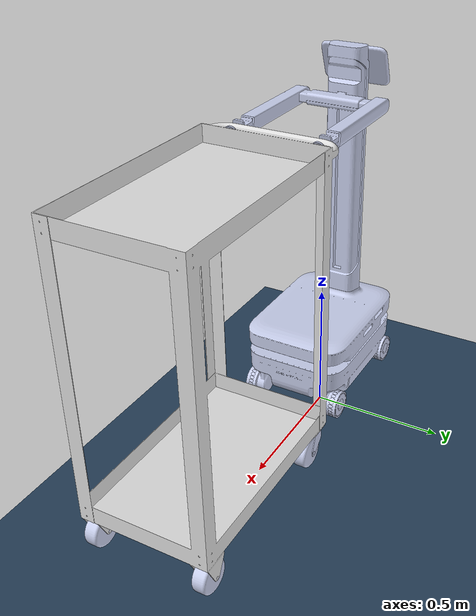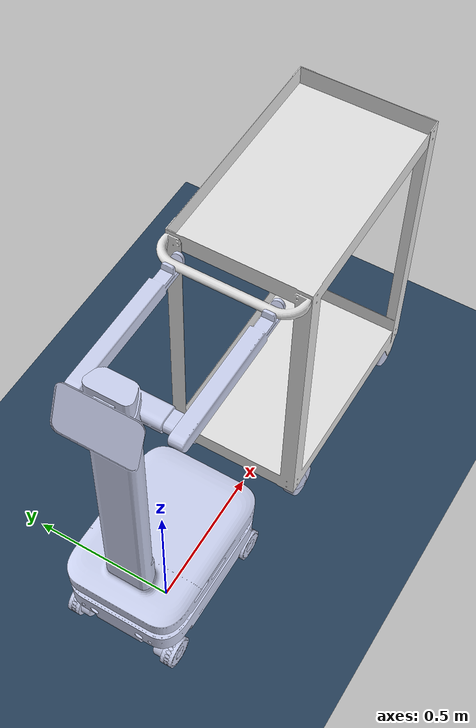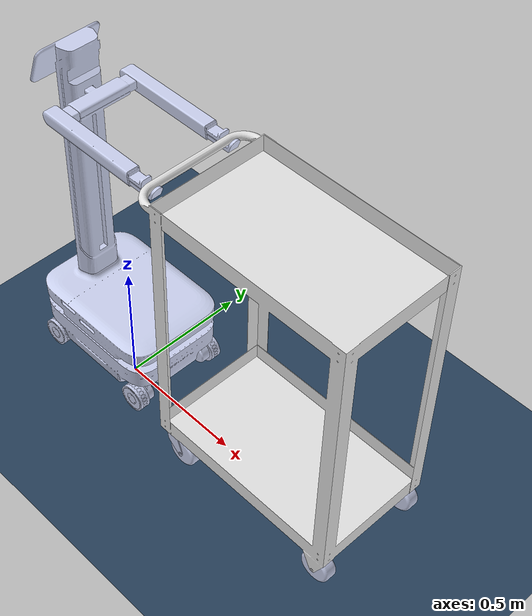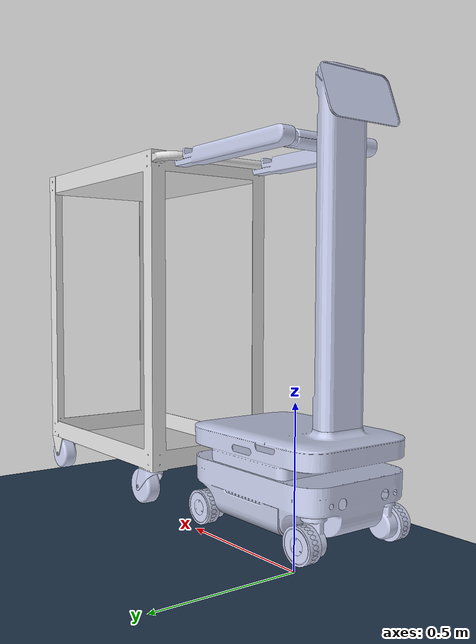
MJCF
<mujoco model="Compal cart scene">
  <include file="compal_amr_cart.xml"/>

  <statistic center="0 0 0.1" extent="0.8"/>

  <visual>
    <headlight diffuse="0.6 0.6 0.6" ambient="0.3 0.3 0.3" specular="0 0 0"/>
    <rgba haze="0.15 0.25 0.35 1"/>
    <global azimuth="-130" elevation="-20"/>
  </visual>

  <asset>
    <texture type="skybox" builtin="gradient" rgb1="0.3 0.5 0.7" rgb2="0 0 0" width="512" height="3072"/>
    <texture type="2d" name="groundplane" builtin="checker" mark="edge" rgb1="0.2 0.3 0.4" rgb2="0.1 0.2 0.3"
      markrgb="0.8 0.8 0.8" width="300" height="300"/>
    <material name="groundplane" texture="groundplane" texuniform="true" texrepeat="5 5" reflectance="0.2"/>
  </asset>

  <worldbody>
    <light pos="0 0 1.5" dir="0 0 -1" directional="true"/>
    <geom name="floor" size="0 0 0.05" type="plane" material="groundplane"/>

  </worldbody>
</mujoco>

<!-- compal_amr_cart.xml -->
<mujoco model="compal_amr_cart">
  <compiler angle="radian" meshdir="meshes"/>

  <default>
      <default class="compal_amr_cart">
          <geom friction="0.4" margin="0.001" condim="1"/>
          <joint damping="0.1" armature="0.01" frictionloss="0.2"/>
          <motor ctrlrange="-23.7 23.7"/>
          <default class="visual">
              <geom type="mesh" contype="0" conaffinity="0" group="2"/>
          </default>
          <default class="rotate">
              <joint axis="0 0 1"/>
              <motor ctrlrange="-23.7 23.7"/>
          </default>
          <default class="collision">
              <geom group="3" type="mesh" rgba="1 0 0 0.3" />
              <default class="wheel">
              <geom size="0.022" priority="1" condim="6"
                  friction="0.5 0.02 0.01"/>
              </default>
          </default>
      </default>
  </default>

  <asset>
    <mesh name="base_link" file="base_link.STL"/>
    <mesh name="base_link_collision" file="base_link_collision.STL"/>
    <mesh name="FL" file="FL.STL"/>
    <mesh name="FLW" file="FLW.STL"/>
    <mesh name="FR" file="FR.STL"/>
    <mesh name="FRW" file="FRW.STL"/>
    <mesh name="RL" file="RL.STL"/>
    <mesh name="RLW" file="RLW.STL"/>
    <mesh name="RR" file="RR.STL"/>
    <mesh name="RRW" file="RRW.STL"/>
    <mesh name="amr_body" file="amr_body.STL"/>
    <mesh name="amr_body_collision" file="amr_body_collision.STL"/>
    <mesh name="L_hand" file="L_hand.STL"/>
    <mesh name="L_hand_collision" file="L_hand_collision.STL"/>
    <mesh name="R_hand" file="R_hand.STL"/>
    <mesh name="R_hand_collision" file="R_hand_collision.STL"/>
    <mesh name="cart" file="cart.STL"/>
    <mesh name="cart_collision" file="cart_collision.STL"/>
    <mesh name="cart_FLW" file="cart_FLW.STL"/>
    <mesh name="cart_FRW" file="cart_FRW.STL"/>
    <mesh name="cart_RL" file="cart_RL.STL"/>
    <mesh name="cart_RLW" file="cart_RLW.STL"/>
    <mesh name="cart_RR" file="cart_RR.STL"/>
    <mesh name="cart_RRW" file="cart_RRW.STL"/>
  </asset>

  <worldbody>
  <body name="base_link" pos="0 0 0.3" childclass="compal_amr_cart">
        <inertial pos="0.00551370 0.00325048 0.00318185" quat="1 0 0 0" mass="100.0" diaginertia="2.46078975 1.60320066 3.12176719" />
        <freejoint />
        <site name="imu" pos="0 0 0" />
        <geom type="mesh" contype="0" conaffinity="0" group="1" density="0" rgba="0.792157 0.819608 0.933333 1" mesh="base_link"/>
        <geom type="mesh" rgba="0.792157 0.819608 0.933333 1" mesh="base_link_collision" class="collision"/>
        <geom pos="-0.165 0 0.152238" type="mesh" contype="0" conaffinity="0" group="1" density="0" rgba="0.792157 0.819608 0.933333 1" mesh="amr_body"/>
        <geom pos="-0.165 0 0.152238" type="mesh" rgba="0.792157 0.819608 0.933333 1" mesh="amr_body_collision" class="collision"/>
        <geom pos="-0.083 0.13 0.928567" quat="1 0 0 0" type="mesh" contype="0" conaffinity="0" group="1" density="0" rgba="0.792157 0.819608 0.933333 1" mesh="L_hand"/>
        <geom pos="-0.083 0.13 0.928567" quat="1 0 0 0" type="mesh" rgba="0.792157 0.819608 0.933333 1" mesh="L_hand_collision" class="collision"/>
        <geom pos="-0.083 -0.13 0.928567" quat="1 0 0 0" type="mesh" contype="0" conaffinity="0" group="1" density="0" rgba="0.792157 0.819608 0.933333 1" mesh="R_hand"/>
        <geom pos="-0.083 -0.13 0.928567" quat="1 0 0 0" type="mesh" rgba="0.792157 0.819608 0.933333 1" mesh="R_hand_collision" class="collision"/>
        <body name="cart" pos="0 0 0">
          <inertial pos="0.40580142 -0.00106548 -0.45416920" quat="1 0 0 0" mass="200.0" diaginertia="58.12365068 45.04362355 24.88292105"/>
          <geom pos="0.341984 0 0.937984" quat="1 0 0 0" type="mesh" contype="0" conaffinity="0" group="1" density="0" rgba="0.882353 0.882353 0.882353 1" mesh="cart"/>
          <geom pos="0.341984 0 0.937984" quat="1 0 0 0" type="mesh" rgba="0.882353 0.882353 0.882353 1" mesh="cart_collision" class="collision"/>
        </body>
        <body name="FL" pos="0.215 0.13 -0.0422269">
          <inertial pos="0 0.00164392 -0.056384" quat="0.706949 0.0132321 -0.0132485 0.707016" mass="5" diaginertia="0.00842429 0.00741798 0.00257045"/>
          <joint name="FL_joint" pos="0 0 0" axis="0 0 1"/>
          <geom type="mesh" contype="0" conaffinity="0" group="1" density="0" rgba="0.792157 0.819608 0.933333 1" mesh="FL"/>
          <body name="FLW" pos="0 0.0199978 -0.0830304" quat="0.999802 0 0.0198807 0">
            <inertial pos="0 0.0191668 0" quat="0.668627 -0.230124 -0.23009 0.66861" mass="5" diaginertia="0.00658753 0.00389578 0.00389557"/>
            <joint name="FLW_joint" pos="0 0 0" axis="0 1 0"/>
            <geom type="mesh" contype="0" conaffinity="0" group="1" density="0" rgba="0.792157 0.819608 0.933333 1" mesh="FLW"/>
            <geom size="0.05175 0.02" pos="0 0.02 0" quat="0.707105 0.707108 0 0" type="cylinder" rgba="0.792157 0.819608 0.933333 1"/>
          </body>
        </body>
        <body name="FR" pos="0.215 -0.13 -0.0422269">
          <inertial pos="0 -0.00164391 -0.056384" quat="0.707019 -0.0132339 0.0132465 0.706946" mass="5" diaginertia="0.00842433 0.00741803 0.00257043"/>
          <joint name="FR_joint" pos="0 0 0" axis="0 0 1"/>
          <geom type="mesh" contype="0" conaffinity="0" group="1" density="0" rgba="0.792157 0.819608 0.933333 1" mesh="FR"/>
          <body name="FRW" pos="0 -0.0199978 -0.0830304">
            <inertial pos="0 -0.0191668 0" quat="0.350378 0.614179 0.614215 0.350369" mass="5" diaginertia="0.00658744 0.00389574 0.00389551"/>
            <joint name="FRW_joint" pos="0 0 0" axis="0 1 0"/>
            <geom type="mesh" contype="0" conaffinity="0" group="1" density="0" rgba="0.792157 0.819608 0.933333 1" mesh="FRW"/>
            <geom size="0.05175 0.02" pos="0 -0.02 0" quat="0.707105 0.707108 0 0" type="cylinder" rgba="0.792157 0.819608 0.933333 1"/>
          </body>
        </body>
        <body name="RL" pos="-0.215 0.13 -0.0422269">
          <inertial pos="0 0.00164391 -0.056384" quat="0.707019 0.013234 -0.0132466 0.706946" mass="5" diaginertia="0.0084243 0.007418 0.00257044"/>
          <joint name="RL_joint" pos="0 0 0" axis="0 0 1"/>
          <geom type="mesh" contype="0" conaffinity="0" group="1" density="0" rgba="0.792157 0.819608 0.933333 1" mesh="RL"/>
          <body name="RLW" pos="0 0.0199978 -0.0830304">
            <inertial pos="0 0.0191668 0" quat="0.66861 -0.23009 -0.230124 0.668627" mass="5" diaginertia="0.00658754 0.00389578 0.00389557"/>
            <joint name="RLW_joint" pos="0 0 0" axis="0 1 0"/>
            <geom type="mesh" contype="0" conaffinity="0" group="1" density="0" rgba="0.792157 0.819608 0.933333 1" mesh="RLW"/>
            <geom size="0.05175 0.02" pos="0 0.02 0" quat="0.707105 0.707108 0 0" type="cylinder" rgba="0.792157 0.819608 0.933333 1"/>
          </body>
        </body>
        <body name="RR" pos="-0.215 -0.13 -0.0422269">
          <inertial pos="0 -0.00164392 -0.056384" quat="0.706949 -0.0132321 0.0132484 0.707016" mass="5" diaginertia="0.00842431 0.00741802 0.00257043"/>
          <joint name="RR_joint" pos="0 0 0" axis="0 0 1"/>
          <geom type="mesh" contype="0" conaffinity="0" group="1" density="0" rgba="0.792157 0.819608 0.933333 1" mesh="RR"/>
          <body name="RRW" pos="0 -0.0199978 -0.0830304">
            <inertial pos="0 -0.0191668 0" quat="0.350351 0.614195 0.614205 0.350387" mass="5" diaginertia="0.00658743 0.00389574 0.00389551"/>
            <joint name="RRW_joint" pos="0 0 0" axis="0 1 0"/>
            <geom type="mesh" contype="0" conaffinity="0" group="1" density="0" rgba="0.792157 0.819608 0.933333 1" mesh="RRW"/>
            <geom size="0.05175 0.02" pos="0 -0.02 0" quat="0.707105 0.707108 0 0" type="cylinder" rgba="0.792157 0.819608 0.933333 1"/>
          </body>
        </body>
        <body name="cart_FLW" pos="1.13456 0.195262 -0.119862">
          <inertial pos="0 0.00128353 0" quat="0.695804 -0.125859 -0.12584 0.695831" mass="5" diaginertia="0.00805942 0.00502453 0.00502422"/>
          <joint name="cart_FLW_joint" pos="0 0 0" axis="0 1 0"/>
          <geom type="mesh" contype="0" conaffinity="0" group="1" density="0" rgba="0.792157 0.819608 0.933333 1" mesh="cart_FLW"/>
          <geom size="0.05715 0.025" quat="0.707105 0.707108 0 0" type="cylinder" rgba="0.792157 0.819608 0.933333 1" class="wheel"/>
        </body>
        <body name="cart_FRW" pos="1.13456 -0.195262 -0.119862">
          <inertial pos="0 -0.00128353 0" quat="0.695804 -0.125859 -0.12584 0.695831" mass="5" diaginertia="0.00805942 0.00502453 0.00502422"/>
          <joint name="cart_FRW_joint" pos="0 0 0" axis="0 1 0"/>
          <geom type="mesh" contype="0" conaffinity="0" group="1" density="0" rgba="0.792157 0.819608 0.933333 1" mesh="cart_FRW"/>
          <geom size="0.05715 0.025" quat="0.707105 0.707108 0 0" type="cylinder" rgba="0.792157 0.819608 0.933333 1" class="wheel"/>
        </body>
        <body name="cart_RL" pos="0.464631 0.195263 -0.0563622">
          <inertial pos="0.0147756 0.00128305 -0.0198944" quat="-3.74208e-05 0.908768 -1.64869e-05 0.417302" mass="5" diaginertia="0.00675848 0.00445415 0.0042574"/>
          <joint name="cart_RL_joint" pos="0 0 0" axis="0 0 1"/>
          <geom type="mesh" contype="0" conaffinity="0" group="1" density="0" rgba="0.792157 0.819608 0.933333 1" mesh="cart_RL"/>
          <body name="cart_RLW" pos="0.047625 0 -0.0635">
            <inertial pos="0 0.00128353 0" quat="0.695804 -0.125859 -0.12584 0.695831" mass="5" diaginertia="0.00805942 0.00502453 0.00502422"/>
            <joint name="cart_RLW_joint" pos="0 0 0" axis="0 1 0"/>
            <geom type="mesh" contype="0" conaffinity="0" group="1" density="0" rgba="0.792157 0.819608 0.933333 1" mesh="cart_RLW"/>
            <geom size="0.05715 0.025" quat="0.707105 0.707108 0 0" type="cylinder" rgba="0.792157 0.819608 0.933333 1" class="wheel"/>
          </body>
        </body>
        <body name="cart_RR" pos="0.464631 -0.195263 -0.0563622">
          <inertial pos="0.0147748 -0.0012832 -0.0198934" quat="0.00032471 0.908769 -0.000151652 0.4173" mass="5" diaginertia="0.00675875 0.00445414 0.00425739"/>
          <joint name="cart_RR_joint" pos="0 0 0" axis="0 0 1"/>
          <geom type="mesh" contype="0" conaffinity="0" group="1" density="0" rgba="0.792157 0.819608 0.933333 1" mesh="cart_RR"/>
          <body name="cart_RRW" pos="0.047625 0 -0.0635">
            <inertial pos="0 -0.00128353 0" quat="0.695804 -0.125859 -0.12584 0.695831" mass="5" diaginertia="0.00805942 0.00502453 0.00502422"/>
            <joint name="cart_RRW_joint" pos="0 0 0" axis="0 1 0"/>
            <geom type="mesh" contype="0" conaffinity="0" group="1" density="0" rgba="0.792157 0.819608 0.933333 1" mesh="cart_RRW"/>
            <geom size="0.05715 0.025" quat="0.707105 0.707108 0 0" type="cylinder" rgba="0.792157 0.819608 0.933333 1" class="wheel"/>
          </body>
        </body>
      </body>
  </worldbody>

  <actuator>
    <motor class="rotate" name="FL_motor" joint="FL_joint" />
    <motor class="rotate" name="FR_motor" joint="FR_joint" />
    <motor class="rotate" name="RL_motor" joint="RL_joint" />
    <motor class="rotate" name="RR_motor" joint="RR_joint" />

    <motor ctrlrange="-15 15" name="FL_wheel" joint="FLW_joint" />
    <motor ctrlrange="-15 15" name="FR_wheel" joint="FRW_joint" />
    <motor ctrlrange="-15 15" name="RL_wheel" joint="RLW_joint" />
    <motor ctrlrange="-15 15" name="RR_wheel" joint="RRW_joint" />
  </actuator>

  <sensor>
    <jointpos name="FL_Z_pos" joint="FL_joint" />
    <jointpos name="FR_Z_pos" joint="FR_joint" />
    <jointpos name="RL_Z_pos" joint="RL_joint" />
    <jointpos name="RR_Z_pos" joint="RR_joint" />

    <jointpos name="FLY_pos" joint="FLW_joint" />
    <jointpos name="FR_Y_pos" joint="FRW_joint" />
    <jointpos name="RL_Y_pos" joint="RLW_joint" />
    <jointpos name="RR_Y_pos" joint="RRW_joint" />

    <jointvel name="FL_Z_vel" joint="FL_joint" />
    <jointvel name="FR_Z_vel" joint="FR_joint" />
    <jointvel name="RL_Z_vel" joint="RL_joint" />
    <jointvel name="RR_Z_vel" joint="RR_joint" />

    <jointvel name="FLY_vel" joint="FLW_joint" />
    <jointvel name="FR_Y_vel" joint="FRW_joint" />
    <jointvel name="RL_Y_vel" joint="RLW_joint" />
    <jointvel name="RR_Y_vel" joint="RRW_joint" />

    <jointactuatorfrc name="FL_Z_torque" joint="FL_joint" />
    <jointactuatorfrc name="FR_Z_torque" joint="FR_joint" />
    <jointactuatorfrc name="RL_Z_torque" joint="RL_joint" />
    <jointactuatorfrc name="RR_Z_torque" joint="RR_joint" />

    <jointactuatorfrc name="FLY_torque" joint="FLW_joint" noise="0.01"/>
    <jointactuatorfrc name="FR_Y_torque" joint="FRW_joint" noise="0.01"/>
    <jointactuatorfrc name="RL_Y_torque" joint="RLW_joint" noise="0.01"/>
    <jointactuatorfrc name="RR_Y_torque" joint="RRW_joint" noise="0.01"/>

    <framequat name="imu_quat" objtype="site" objname="imu" noise="0.0"/>
    <gyro name="imu_gyro" site="imu" noise="0.0"/>
    <accelerometer name="imu_acc" site="imu" />

    <framepos name="frame_pos" objtype="site" objname="imu" />
    <framelinvel name="frame_lin_vel" objtype="site" objname="imu" />
    <frameangvel name="frame_ang_vel" objtype="site" objname="imu" />
  </sensor>

</mujoco>
